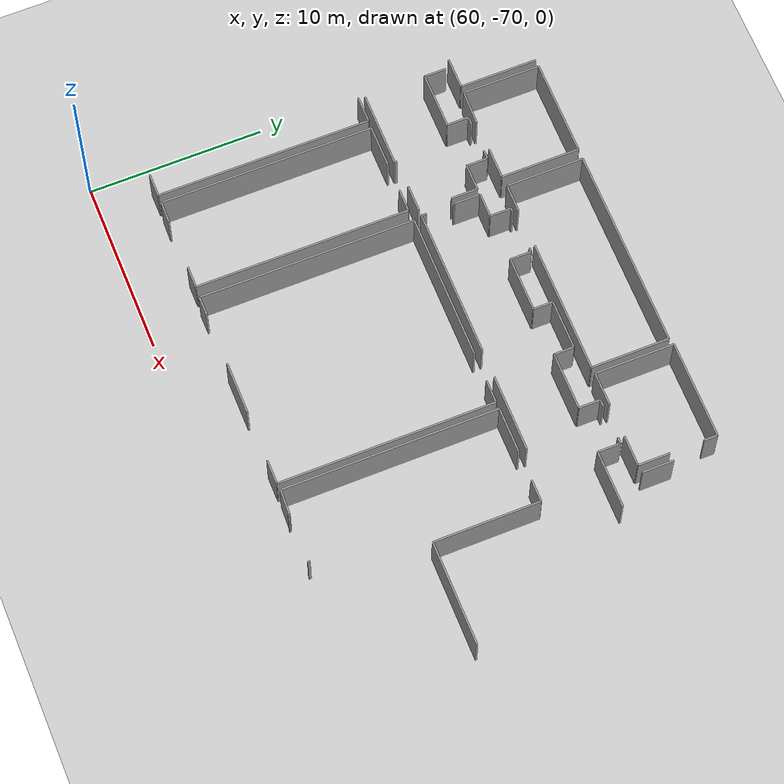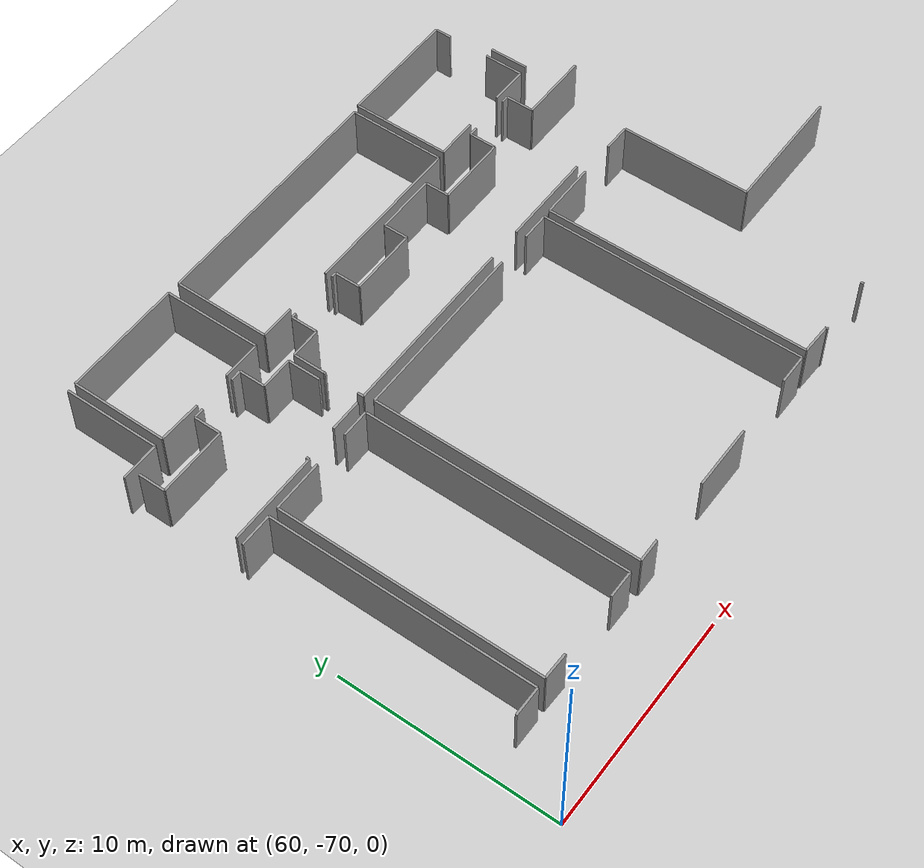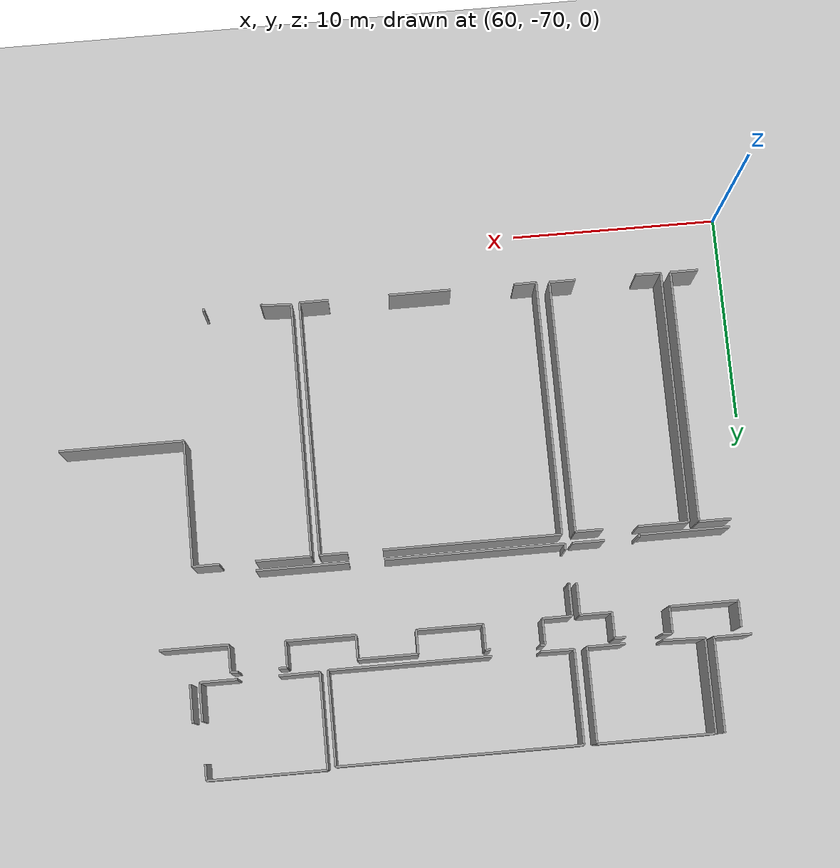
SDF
<sdf version="1.6">
 <world name="default">
  <model name="ground_plane">
   <static>1</static>
   <link name="link">
    <collision name="collision">
     <geometry><plane><normal>0 0 1</normal><size>100 100</size></plane></geometry>
     <surface><friction><ode><mu>100</mu><mu2>50</mu2></ode></friction></surface>
    </collision>
    <visual name="visual">
     <cast_shadows>0</cast_shadows>
     <geometry><plane><normal>0 0 1</normal><size>100 100</size></plane></geometry>
     <material>
      <script><uri>file://media/materials/scripts/gazebo.material</uri><name>Gazebo/Grey</name></script>
     </material>
    </visual>
   </link>
  </model>
  <model name="50036894">
   <static>1</static>
   <link name="Wall_393">
    <collision name="Wall_393_Collision">
     <geometry><box><size>1.24973847549 0.1 2.5</size></box></geometry>
     <pose>0.624869237743 0 1.25 0 0 0</pose>
    </collision>
    <visual name="Wall_393_Visual">
     <pose>0.624869237743 0 1.25 0 0 0</pose>
     <geometry><box><size>1.24973847549 0.1 2.5</size></box></geometry>
     <material>
      <script><uri>file://media/materials/scripts/gazebo.material</uri><name>Gazebo/Grey</name></script>
      <ambient>1 1 1 1</ambient>
     </material>
    </visual>
    <pose>184.205314178 -116.868045825 0 0 0 -1.57079632679</pose>
   </link>
   <link name="Wall_394">
    <collision name="Wall_394_Collision">
     <geometry><box><size>3.25368194815 0.1 2.5</size></box></geometry>
     <pose>1.62684097408 0 1.25 0 0 0</pose>
    </collision>
    <visual name="Wall_394_Visual">
     <pose>1.62684097408 0 1.25 0 0 0</pose>
     <geometry><box><size>3.25368194815 0.1 2.5</size></box></geometry>
     <material>
      <script><uri>file://media/materials/scripts/gazebo.material</uri><name>Gazebo/Grey</name></script>
      <ambient>1 1 1 1</ambient>
     </material>
    </visual>
    <pose>184.205314178 -118.117784301 0 0 0 0.0</pose>
   </link>
   <link name="Wall_395">
    <collision name="Wall_395_Collision">
     <geometry><box><size>1.26089685473 0.1 2.5</size></box></geometry>
     <pose>0.630448427366 0 1.25 0 0 0</pose>
    </collision>
    <visual name="Wall_395_Visual">
     <pose>0.630448427366 0 1.25 0 0 0</pose>
     <geometry><box><size>1.26089685473 0.1 2.5</size></box></geometry>
     <material>
      <script><uri>file://media/materials/scripts/gazebo.material</uri><name>Gazebo/Grey</name></script>
      <ambient>1 1 1 1</ambient>
     </material>
    </visual>
    <pose>187.458996126 -118.117784301 0 0 0 1.57079632679</pose>
   </link>
   <link name="Wall_396">
    <collision name="Wall_396_Collision">
     <geometry><box><size>0.466623132081 0.1 2.5</size></box></geometry>
     <pose>0.23331156604 0 1.25 0 0 0</pose>
    </collision>
    <visual name="Wall_396_Visual">
     <pose>0.23331156604 0 1.25 0 0 0</pose>
     <geometry><box><size>0.466623132081 0.1 2.5</size></box></geometry>
     <material>
      <script><uri>file://media/materials/scripts/gazebo.material</uri><name>Gazebo/Grey</name></script>
      <ambient>1 1 1 1</ambient>
     </material>
    </visual>
    <pose>187.458996126 -116.856887446 0 0 0 0.0</pose>
   </link>
   <link name="Wall_397">
    <collision name="Wall_397_Collision">
     <geometry><box><size>0.517343037742 0.1 2.5</size></box></geometry>
     <pose>0.258671518871 0 1.25 0 0 0</pose>
    </collision>
    <visual name="Wall_397_Visual">
     <pose>0.258671518871 0 1.25 0 0 0</pose>
     <geometry><box><size>0.517343037742 0.1 2.5</size></box></geometry>
     <material>
      <script><uri>file://media/materials/scripts/gazebo.material</uri><name>Gazebo/Grey</name></script>
      <ambient>1 1 1 1</ambient>
     </material>
    </visual>
    <pose>189.665312023 -116.856887446 0 0 0 0.0</pose>
   </link>
   <link name="Wall_398">
    <collision name="Wall_398_Collision">
     <geometry><box><size>1.22311052501 0.1 2.5</size></box></geometry>
     <pose>0.611555262507 0 1.25 0 0 0</pose>
    </collision>
    <visual name="Wall_398_Visual">
     <pose>0.611555262507 0 1.25 0 0 0</pose>
     <geometry><box><size>1.22311052501 0.1 2.5</size></box></geometry>
     <material>
      <script><uri>file://media/materials/scripts/gazebo.material</uri><name>Gazebo/Grey</name></script>
      <ambient>1 1 1 1</ambient>
     </material>
    </visual>
    <pose>190.18265506 -116.856887446 0 0 0 -1.57079632679</pose>
   </link>
   <link name="Wall_399">
    <collision name="Wall_399_Collision">
     <geometry><box><size>1.51398918398 0.1 2.5</size></box></geometry>
     <pose>0.75699459199 0 1.25 0 0 0</pose>
    </collision>
    <visual name="Wall_399_Visual">
     <pose>0.75699459199 0 1.25 0 0 0</pose>
     <geometry><box><size>1.51398918398 0.1 2.5</size></box></geometry>
     <material>
      <script><uri>file://media/materials/scripts/gazebo.material</uri><name>Gazebo/Grey</name></script>
      <ambient>1 1 1 1</ambient>
     </material>
    </visual>
    <pose>190.18265506 -118.079997971 0 0 0 0.0</pose>
   </link>
   <link name="Wall_400">
    <collision name="Wall_400_Collision">
     <geometry><box><size>1.53326274813 0.1 2.5</size></box></geometry>
     <pose>0.766631374066 0 1.25 0 0 0</pose>
    </collision>
    <visual name="Wall_400_Visual">
     <pose>0.766631374066 0 1.25 0 0 0</pose>
     <geometry><box><size>1.53326274813 0.1 2.5</size></box></geometry>
     <material>
      <script><uri>file://media/materials/scripts/gazebo.material</uri><name>Gazebo/Grey</name></script>
      <ambient>1 1 1 1</ambient>
     </material>
    </visual>
    <pose>191.696644244 -118.079997971 0 0 0 -1.57079632679</pose>
   </link>
   <link name="Wall_401">
    <collision name="Wall_401_Collision">
     <geometry><box><size>1.52413316511 0.1 2.5</size></box></geometry>
     <pose>0.762066582556 0 1.25 0 0 0</pose>
    </collision>
    <visual name="Wall_401_Visual">
     <pose>0.762066582556 0 1.25 0 0 0</pose>
     <geometry><box><size>1.52413316511 0.1 2.5</size></box></geometry>
     <material>
      <script><uri>file://media/materials/scripts/gazebo.material</uri><name>Gazebo/Grey</name></script>
      <ambient>1 1 1 1</ambient>
     </material>
    </visual>
    <pose>191.696644244 -121.501562807 0 0 0 3.14159265359</pose>
   </link>
   <link name="Wall_402">
    <collision name="Wall_402_Collision">
     <geometry><box><size>0.135929347171 0.1 2.5</size></box></geometry>
     <pose>0.0679646735857 0 1.25 0 0 0</pose>
    </collision>
    <visual name="Wall_402_Visual">
     <pose>0.0679646735857 0 1.25 0 0 0</pose>
     <geometry><box><size>0.135929347171 0.1 2.5</size></box></geometry>
     <material>
      <script><uri>file://media/materials/scripts/gazebo.material</uri><name>Gazebo/Grey</name></script>
      <ambient>1 1 1 1</ambient>
     </material>
    </visual>
    <pose>188.519042155 -121.501562807 0 0 0 -1.57079632679</pose>
   </link>
   <link name="Wall_403">
    <collision name="Wall_403_Collision">
     <geometry><box><size>4.33401593873 0.1 2.5</size></box></geometry>
     <pose>2.16700796937 0 1.25 0 0 0</pose>
    </collision>
    <visual name="Wall_403_Visual">
     <pose>2.16700796937 0 1.25 0 0 0</pose>
     <geometry><box><size>4.33401593873 0.1 2.5</size></box></geometry>
     <material>
      <script><uri>file://media/materials/scripts/gazebo.material</uri><name>Gazebo/Grey</name></script>
      <ambient>1 1 1 1</ambient>
     </material>
    </visual>
    <pose>188.519042155 -121.637492154 0 0 0 3.14159265359</pose>
   </link>
   <link name="Wall_438">
    <collision name="Wall_438_Collision">
     <geometry><box><size>1.53427714624 0.1 2.5</size></box></geometry>
     <pose>0.767138573122 0 1.25 0 0 0</pose>
    </collision>
    <visual name="Wall_438_Visual">
     <pose>0.767138573122 0 1.25 0 0 0</pose>
     <geometry><box><size>1.53427714624 0.1 2.5</size></box></geometry>
     <material>
      <script><uri>file://media/materials/scripts/gazebo.material</uri><name>Gazebo/Grey</name></script>
      <ambient>1 1 1 1</ambient>
     </material>
    </visual>
    <pose>184.088658395 -122.008508264 0 0 0 0.0</pose>
   </link>
   <link name="Wall_439">
    <collision name="Wall_439_Collision">
     <geometry><box><size>12.243531627 0.1 2.5</size></box></geometry>
     <pose>6.12176581352 0 1.25 0 0 0</pose>
    </collision>
    <visual name="Wall_439_Visual">
     <pose>6.12176581352 0 1.25 0 0 0</pose>
     <geometry><box><size>12.243531627 0.1 2.5</size></box></geometry>
     <material>
      <script><uri>file://media/materials/scripts/gazebo.material</uri><name>Gazebo/Grey</name></script>
      <ambient>1 1 1 1</ambient>
     </material>
    </visual>
    <pose>185.622935541 -122.008508264 0 0 0 -1.57079632679</pose>
   </link>
   <link name="Wall_440">
    <collision name="Wall_440_Collision">
     <geometry><box><size>1.33646951417 0.1 2.5</size></box></geometry>
     <pose>0.668234757083 0 1.25 0 0 0</pose>
    </collision>
    <visual name="Wall_440_Visual">
     <pose>0.668234757083 0 1.25 0 0 0</pose>
     <geometry><box><size>1.33646951417 0.1 2.5</size></box></geometry>
     <material>
      <script><uri>file://media/materials/scripts/gazebo.material</uri><name>Gazebo/Grey</name></script>
      <ambient>1 1 1 1</ambient>
     </material>
    </visual>
    <pose>185.622935541 -134.252039891 0 0 0 3.14159265359</pose>
   </link>
   <link name="Wall_442">
    <collision name="Wall_442_Collision">
     <geometry><box><size>12.2087884917 0.1 2.5</size></box></geometry>
     <pose>6.10439424583 0 1.25 0 0 0</pose>
    </collision>
    <visual name="Wall_442_Visual">
     <pose>6.10439424583 0 1.25 0 0 0</pose>
     <geometry><box><size>12.2087884917 0.1 2.5</size></box></geometry>
     <material>
      <script><uri>file://media/materials/scripts/gazebo.material</uri><name>Gazebo/Grey</name></script>
      <ambient>1 1 1 1</ambient>
     </material>
    </visual>
    <pose>186.097166659 -134.237584718 0 0 0 1.57079632679</pose>
   </link>
   <link name="Wall_443">
    <collision name="Wall_443_Collision">
     <geometry><box><size>2.42187549531 0.1 2.5</size></box></geometry>
     <pose>1.21093774766 0 1.25 0 0 0</pose>
    </collision>
    <visual name="Wall_443_Visual">
     <pose>1.21093774766 0 1.25 0 0 0</pose>
     <geometry><box><size>2.42187549531 0.1 2.5</size></box></geometry>
     <material>
      <script><uri>file://media/materials/scripts/gazebo.material</uri><name>Gazebo/Grey</name></script>
      <ambient>1 1 1 1</ambient>
     </material>
    </visual>
    <pose>186.097166659 -122.028796226 0 0 0 0.0</pose>
   </link>
   <link name="Wall_444">
    <collision name="Wall_444_Collision">
     <geometry><box><size>1.32632553303 0.1 2.5</size></box></geometry>
     <pose>0.663162766517 0 1.25 0 0 0</pose>
    </collision>
    <visual name="Wall_444_Visual">
     <pose>0.663162766517 0 1.25 0 0 0</pose>
     <geometry><box><size>1.32632553303 0.1 2.5</size></box></geometry>
     <material>
      <script><uri>file://media/materials/scripts/gazebo.material</uri><name>Gazebo/Grey</name></script>
      <ambient>1 1 1 1</ambient>
     </material>
    </visual>
    <pose>190.187727051 -122.028796226 0 0 0 0.0</pose>
   </link>
   <link name="Wall_445">
    <collision name="Wall_445_Collision">
     <geometry><box><size>12.2376988379 0.1 2.5</size></box></geometry>
     <pose>6.11884941894 0 1.25 0 0 0</pose>
    </collision>
    <visual name="Wall_445_Visual">
     <pose>6.11884941894 0 1.25 0 0 0</pose>
     <geometry><box><size>12.2376988379 0.1 2.5</size></box></geometry>
     <material>
      <script><uri>file://media/materials/scripts/gazebo.material</uri><name>Gazebo/Grey</name></script>
      <ambient>1 1 1 1</ambient>
     </material>
    </visual>
    <pose>191.514052584 -122.028796226 0 0 0 -1.57079632679</pose>
   </link>
   <link name="Wall_446">
    <collision name="Wall_446_Collision">
     <geometry><box><size>1.25531766511 0.1 2.5</size></box></geometry>
     <pose>0.627658832555 0 1.25 0 0 0</pose>
    </collision>
    <visual name="Wall_446_Visual">
     <pose>0.627658832555 0 1.25 0 0 0</pose>
     <geometry><box><size>1.25531766511 0.1 2.5</size></box></geometry>
     <material>
      <script><uri>file://media/materials/scripts/gazebo.material</uri><name>Gazebo/Grey</name></script>
      <ambient>1 1 1 1</ambient>
     </material>
    </visual>
    <pose>191.514052584 -134.266495064 0 0 0 3.14159265359</pose>
   </link>
   <link name="Wall_447">
    <collision name="Wall_447_Collision">
     <geometry><box><size>1.22015627967 0.1 2.5</size></box></geometry>
     <pose>0.610078139834 0 1.25 0 0 0</pose>
    </collision>
    <visual name="Wall_447_Visual">
     <pose>0.610078139834 0 1.25 0 0 0</pose>
     <geometry><box><size>1.22015627967 0.1 2.5</size></box></geometry>
     <material>
      <script><uri>file://media/materials/scripts/gazebo.material</uri><name>Gazebo/Grey</name></script>
      <ambient>1 1 1 1</ambient>
     </material>
    </visual>
    <pose>187.31698039 -134.266495064 0 0 0 3.1178964661</pose>
   </link>
   <link name="Wall_448">
    <collision name="Wall_448_Collision">
     <geometry><box><size>4.45193971939 0.1 2.5</size></box></geometry>
     <pose>2.2259698597 0 1.25 0 0 0</pose>
    </collision>
    <visual name="Wall_448_Visual">
     <pose>2.2259698597 0 1.25 0 0 0</pose>
     <geometry><box><size>4.45193971939 0.1 2.5</size></box></geometry>
     <material>
      <script><uri>file://media/materials/scripts/gazebo.material</uri><name>Gazebo/Grey</name></script>
      <ambient>1 1 1 1</ambient>
     </material>
    </visual>
    <pose>185.952614928 -116.504637701 0 0 0 1.57079632679</pose>
   </link>
   <link name="Wall_449">
    <collision name="Wall_449_Collision">
     <geometry><box><size>5.56143765573 0.1 2.5</size></box></geometry>
     <pose>2.78071882786 0 1.25 0 0 0</pose>
    </collision>
    <visual name="Wall_449_Visual">
     <pose>2.78071882786 0 1.25 0 0 0</pose>
     <geometry><box><size>5.56143765573 0.1 2.5</size></box></geometry>
     <material>
      <script><uri>file://media/materials/scripts/gazebo.material</uri><name>Gazebo/Grey</name></script>
      <ambient>1 1 1 1</ambient>
     </material>
    </visual>
    <pose>185.952614928 -112.052697982 0 0 0 0.0</pose>
   </link>
   <link name="Wall_450">
    <collision name="Wall_450_Collision">
     <geometry><box><size>4.51432520336 0.1 2.5</size></box></geometry>
     <pose>2.25716260168 0 1.25 0 0 0</pose>
    </collision>
    <visual name="Wall_450_Visual">
     <pose>2.25716260168 0 1.25 0 0 0</pose>
     <geometry><box><size>4.51432520336 0.1 2.5</size></box></geometry>
     <material>
      <script><uri>file://media/materials/scripts/gazebo.material</uri><name>Gazebo/Grey</name></script>
      <ambient>1 1 1 1</ambient>
     </material>
    </visual>
    <pose>191.514052584 -112.052697982 0 0 0 -1.57079632679</pose>
   </link>
   <link name="Wall_451">
    <collision name="Wall_451_Collision">
     <geometry><box><size>1.8107006321 0.1 2.5</size></box></geometry>
     <pose>0.905350316048 0 1.25 0 0 0</pose>
    </collision>
    <visual name="Wall_451_Visual">
     <pose>0.905350316048 0 1.25 0 0 0</pose>
     <geometry><box><size>1.8107006321 0.1 2.5</size></box></geometry>
     <material>
      <script><uri>file://media/materials/scripts/gazebo.material</uri><name>Gazebo/Grey</name></script>
      <ambient>1 1 1 1</ambient>
     </material>
    </visual>
    <pose>191.514052584 -116.567023185 0 0 0 3.14159265359</pose>
   </link>
   <link name="Wall_452">
    <collision name="Wall_452_Collision">
     <geometry><box><size>1.98666406677 0.1 2.5</size></box></geometry>
     <pose>0.993332033385 0 1.25 0 0 0</pose>
    </collision>
    <visual name="Wall_452_Visual">
     <pose>0.993332033385 0 1.25 0 0 0</pose>
     <geometry><box><size>1.98666406677 0.1 2.5</size></box></geometry>
     <material>
      <script><uri>file://media/materials/scripts/gazebo.material</uri><name>Gazebo/Grey</name></script>
      <ambient>1 1 1 1</ambient>
     </material>
    </visual>
    <pose>187.938299235 -116.567023185 0 0 0 3.11018536005</pose>
   </link>
   <link name="Wall_455">
    <collision name="Wall_455_Collision">
     <geometry><box><size>4.46740929062 0.1 2.5</size></box></geometry>
     <pose>2.23370464531 0 1.25 0 0 0</pose>
    </collision>
    <visual name="Wall_455_Visual">
     <pose>2.23370464531 0 1.25 0 0 0</pose>
     <geometry><box><size>4.46740929062 0.1 2.5</size></box></geometry>
     <material>
      <script><uri>file://media/materials/scripts/gazebo.material</uri><name>Gazebo/Grey</name></script>
      <ambient>1 1 1 1</ambient>
     </material>
    </visual>
    <pose>185.539247697 -112.037228411 0 0 0 -1.57079632679</pose>
   </link>
   <link name="Wall_456">
    <collision name="Wall_456_Collision">
     <geometry><box><size>1.79041266983 0.1 2.5</size></box></geometry>
     <pose>0.895206334916 0 1.25 0 0 0</pose>
    </collision>
    <visual name="Wall_456_Visual">
     <pose>0.895206334916 0 1.25 0 0 0</pose>
     <geometry><box><size>1.79041266983 0.1 2.5</size></box></geometry>
     <material>
      <script><uri>file://media/materials/scripts/gazebo.material</uri><name>Gazebo/Grey</name></script>
      <ambient>1 1 1 1</ambient>
     </material>
    </visual>
    <pose>185.539247697 -116.504637701 0 0 0 3.14159265359</pose>
   </link>
   <link name="Wall_468">
    <collision name="Wall_468_Collision">
     <geometry><box><size>1.49370122172 0.1 2.5</size></box></geometry>
     <pose>0.746850610858 0 1.25 0 0 0</pose>
    </collision>
    <visual name="Wall_468_Visual">
     <pose>0.746850610858 0 1.25 0 0 0</pose>
     <geometry><box><size>1.49370122172 0.1 2.5</size></box></geometry>
     <material>
      <script><uri>file://media/materials/scripts/gazebo.material</uri><name>Gazebo/Grey</name></script>
      <ambient>1 1 1 1</ambient>
     </material>
    </visual>
    <pose>192.056755574 -119.564062411 0 0 0 1.57079632679</pose>
   </link>
   <link name="Wall_469">
    <collision name="Wall_469_Collision">
     <geometry><box><size>1.40747738209 0.1 2.5</size></box></geometry>
     <pose>0.703738691046 0 1.25 0 0 0</pose>
    </collision>
    <visual name="Wall_469_Visual">
     <pose>0.703738691046 0 1.25 0 0 0</pose>
     <geometry><box><size>1.40747738209 0.1 2.5</size></box></geometry>
     <material>
      <script><uri>file://media/materials/scripts/gazebo.material</uri><name>Gazebo/Grey</name></script>
      <ambient>1 1 1 1</ambient>
     </material>
    </visual>
    <pose>192.056755574 -118.070361189 0 0 0 0.0</pose>
   </link>
   <link name="Wall_470">
    <collision name="Wall_470_Collision">
     <geometry><box><size>1.23224010803 0.1 2.5</size></box></geometry>
     <pose>0.616120054017 0 1.25 0 0 0</pose>
    </collision>
    <visual name="Wall_470_Visual">
     <pose>0.616120054017 0 1.25 0 0 0</pose>
     <geometry><box><size>1.23224010803 0.1 2.5</size></box></geometry>
     <material>
      <script><uri>file://media/materials/scripts/gazebo.material</uri><name>Gazebo/Grey</name></script>
      <ambient>1 1 1 1</ambient>
     </material>
    </visual>
    <pose>193.464232957 -118.070361189 0 0 0 1.57079632679</pose>
   </link>
   <link name="Wall_471">
    <collision name="Wall_471_Collision">
     <geometry><box><size>0.230775570757 0.1 2.5</size></box></geometry>
     <pose>0.115387785379 0 1.25 0 0 0</pose>
    </collision>
    <visual name="Wall_471_Visual">
     <pose>0.115387785379 0 1.25 0 0 0</pose>
     <geometry><box><size>0.230775570757 0.1 2.5</size></box></geometry>
     <material>
      <script><uri>file://media/materials/scripts/gazebo.material</uri><name>Gazebo/Grey</name></script>
      <ambient>1 1 1 1</ambient>
     </material>
    </visual>
    <pose>193.464232957 -116.838121081 0 0 0 0.0</pose>
   </link>
   <link name="Wall_472">
    <collision name="Wall_472_Collision">
     <geometry><box><size>0.24091955189 0.1 2.5</size></box></geometry>
     <pose>0.120459775945 0 1.25 0 0 0</pose>
    </collision>
    <visual name="Wall_472_Visual">
     <pose>0.120459775945 0 1.25 0 0 0</pose>
     <geometry><box><size>0.24091955189 0.1 2.5</size></box></geometry>
     <material>
      <script><uri>file://media/materials/scripts/gazebo.material</uri><name>Gazebo/Grey</name></script>
      <ambient>1 1 1 1</ambient>
     </material>
    </visual>
    <pose>196.020516202 -116.838121081 0 0 0 0.0</pose>
   </link>
   <link name="Wall_473">
    <collision name="Wall_473_Collision">
     <geometry><box><size>1.21169854624 0.1 2.5</size></box></geometry>
     <pose>0.60584927312 0 1.25 0 0 0</pose>
    </collision>
    <visual name="Wall_473_Visual">
     <pose>0.60584927312 0 1.25 0 0 0</pose>
     <geometry><box><size>1.21169854624 0.1 2.5</size></box></geometry>
     <material>
      <script><uri>file://media/materials/scripts/gazebo.material</uri><name>Gazebo/Grey</name></script>
      <ambient>1 1 1 1</ambient>
     </material>
    </visual>
    <pose>196.261435754 -116.838121081 0 0 0 -1.57079632679</pose>
   </link>
   <link name="Wall_474">
    <collision name="Wall_474_Collision">
     <geometry><box><size>3.16745810853 0.1 2.5</size></box></geometry>
     <pose>1.58372905426 0 1.25 0 0 0</pose>
    </collision>
    <visual name="Wall_474_Visual">
     <pose>1.58372905426 0 1.25 0 0 0</pose>
     <geometry><box><size>3.16745810853 0.1 2.5</size></box></geometry>
     <material>
      <script><uri>file://media/materials/scripts/gazebo.material</uri><name>Gazebo/Grey</name></script>
      <ambient>1 1 1 1</ambient>
     </material>
    </visual>
    <pose>196.261435754 -118.049819627 0 0 0 0.0</pose>
   </link>
   <link name="Wall_475">
    <collision name="Wall_475_Collision">
     <geometry><box><size>1.12927869954 0.1 2.5</size></box></geometry>
     <pose>0.564639349771 0 1.25 0 0 0</pose>
    </collision>
    <visual name="Wall_475_Visual">
     <pose>0.564639349771 0 1.25 0 0 0</pose>
     <geometry><box><size>1.12927869954 0.1 2.5</size></box></geometry>
     <material>
      <script><uri>file://media/materials/scripts/gazebo.material</uri><name>Gazebo/Grey</name></script>
      <ambient>1 1 1 1</ambient>
     </material>
    </visual>
    <pose>199.428893862 -118.049819627 0 0 0 1.57079632679</pose>
   </link>
   <link name="Wall_476">
    <collision name="Wall_476_Collision">
     <geometry><box><size>2.84031471701 0.1 2.5</size></box></geometry>
     <pose>1.42015735851 0 1.25 0 0 0</pose>
    </collision>
    <visual name="Wall_476_Visual">
     <pose>1.42015735851 0 1.25 0 0 0</pose>
     <geometry><box><size>2.84031471701 0.1 2.5</size></box></geometry>
     <material>
      <script><uri>file://media/materials/scripts/gazebo.material</uri><name>Gazebo/Grey</name></script>
      <ambient>1 1 1 1</ambient>
     </material>
    </visual>
    <pose>199.428893862 -116.920540928 0 0 0 0.0</pose>
   </link>
   <link name="Wall_477">
    <collision name="Wall_477_Collision">
     <geometry><box><size>1.14018347926 0.1 2.5</size></box></geometry>
     <pose>0.570091739629 0 1.25 0 0 0</pose>
    </collision>
    <visual name="Wall_477_Visual">
     <pose>0.570091739629 0 1.25 0 0 0</pose>
     <geometry><box><size>1.14018347926 0.1 2.5</size></box></geometry>
     <material>
      <script><uri>file://media/materials/scripts/gazebo.material</uri><name>Gazebo/Grey</name></script>
      <ambient>1 1 1 1</ambient>
     </material>
    </visual>
    <pose>202.269208579 -116.920540928 0 0 0 -1.57079632679</pose>
   </link>
   <link name="Wall_478">
    <collision name="Wall_478_Collision">
     <geometry><box><size>3.31200983966 0.1 2.5</size></box></geometry>
     <pose>1.65600491983 0 1.25 0 0 0</pose>
    </collision>
    <visual name="Wall_478_Visual">
     <pose>1.65600491983 0 1.25 0 0 0</pose>
     <geometry><box><size>3.31200983966 0.1 2.5</size></box></geometry>
     <material>
      <script><uri>file://media/materials/scripts/gazebo.material</uri><name>Gazebo/Grey</name></script>
      <ambient>1 1 1 1</ambient>
     </material>
    </visual>
    <pose>202.269208579 -118.060724407 0 0 0 0.0</pose>
   </link>
   <link name="Wall_479">
    <collision name="Wall_479_Collision">
     <geometry><box><size>1.23883369577 0.1 2.5</size></box></geometry>
     <pose>0.619416847885 0 1.25 0 0 0</pose>
    </collision>
    <visual name="Wall_479_Visual">
     <pose>0.619416847885 0 1.25 0 0 0</pose>
     <geometry><box><size>1.23883369577 0.1 2.5</size></box></geometry>
     <material>
      <script><uri>file://media/materials/scripts/gazebo.material</uri><name>Gazebo/Grey</name></script>
      <ambient>1 1 1 1</ambient>
     </material>
    </visual>
    <pose>205.581218419 -118.060724407 0 0 0 1.57079632679</pose>
   </link>
   <link name="Wall_480">
    <collision name="Wall_480_Collision">
     <geometry><box><size>0.405759245288 0.1 2.5</size></box></geometry>
     <pose>0.202879622644 0 1.25 0 0 0</pose>
    </collision>
    <visual name="Wall_480_Visual">
     <pose>0.202879622644 0 1.25 0 0 0</pose>
     <geometry><box><size>0.405759245288 0.1 2.5</size></box></geometry>
     <material>
      <script><uri>file://media/materials/scripts/gazebo.material</uri><name>Gazebo/Grey</name></script>
      <ambient>1 1 1 1</ambient>
     </material>
    </visual>
    <pose>205.581218419 -116.821890711 0 0 0 0.0</pose>
   </link>
   <link name="Wall_481">
    <collision name="Wall_481_Collision">
     <geometry><box><size>0.352503344344 0.1 2.5</size></box></geometry>
     <pose>0.176251672172 0 1.25 0 0 0</pose>
    </collision>
    <visual name="Wall_481_Visual">
     <pose>0.176251672172 0 1.25 0 0 0</pose>
     <geometry><box><size>0.352503344344 0.1 2.5</size></box></geometry>
     <material>
      <script><uri>file://media/materials/scripts/gazebo.material</uri><name>Gazebo/Grey</name></script>
      <ambient>1 1 1 1</ambient>
     </material>
    </visual>
    <pose>207.894046117 -116.821890711 0 0 0 0.0</pose>
   </link>
   <link name="Wall_482">
    <collision name="Wall_482_Collision">
     <geometry><box><size>1.3045159736 0.1 2.5</size></box></geometry>
     <pose>0.6522579868 0 1.25 0 0 0</pose>
    </collision>
    <visual name="Wall_482_Visual">
     <pose>0.6522579868 0 1.25 0 0 0</pose>
     <geometry><box><size>1.3045159736 0.1 2.5</size></box></geometry>
     <material>
      <script><uri>file://media/materials/scripts/gazebo.material</uri><name>Gazebo/Grey</name></script>
      <ambient>1 1 1 1</ambient>
     </material>
    </visual>
    <pose>208.246549461 -116.821890711 0 0 0 -1.57079632679</pose>
   </link>
   <link name="Wall_483">
    <collision name="Wall_483_Collision">
     <geometry><box><size>3.27143391513 0.1 2.5</size></box></geometry>
     <pose>1.63571695757 0 1.25 0 0 0</pose>
    </collision>
    <visual name="Wall_483_Visual">
     <pose>1.63571695757 0 1.25 0 0 0</pose>
     <geometry><box><size>3.27143391513 0.1 2.5</size></box></geometry>
     <material>
      <script><uri>file://media/materials/scripts/gazebo.material</uri><name>Gazebo/Grey</name></script>
      <ambient>1 1 1 1</ambient>
     </material>
    </visual>
    <pose>208.246549461 -118.126406685 0 0 0 0.0</pose>
   </link>
   <link name="Wall_496">
    <collision name="Wall_496_Collision">
     <geometry><box><size>4.4126317925 0.1 2.5</size></box></geometry>
     <pose>2.20631589625 0 1.25 0 0 0</pose>
    </collision>
    <visual name="Wall_496_Visual">
     <pose>2.20631589625 0 1.25 0 0 0</pose>
     <geometry><box><size>4.4126317925 0.1 2.5</size></box></geometry>
     <material>
      <script><uri>file://media/materials/scripts/gazebo.material</uri><name>Gazebo/Grey</name></script>
      <ambient>1 1 1 1</ambient>
     </material>
    </visual>
    <pose>206.71480831 -121.499280411 0 0 0 3.14159265359</pose>
   </link>
   <link name="Wall_497">
    <collision name="Wall_497_Collision">
     <geometry><box><size>8.5716640567 0.1 2.5</size></box></geometry>
     <pose>4.28583202835 0 1.25 0 0 0</pose>
    </collision>
    <visual name="Wall_497_Visual">
     <pose>4.28583202835 0 1.25 0 0 0</pose>
     <geometry><box><size>8.5716640567 0.1 2.5</size></box></geometry>
     <material>
      <script><uri>file://media/materials/scripts/gazebo.material</uri><name>Gazebo/Grey</name></script>
      <ambient>1 1 1 1</ambient>
     </material>
    </visual>
    <pose>200.630955626 -121.499280411 0 0 0 3.14159265359</pose>
   </link>
   <link name="Wall_498">
    <collision name="Wall_498_Collision">
     <geometry><box><size>0.292400256136 0.1 2.5</size></box></geometry>
     <pose>0.146200128068 0 1.25 0 0 0</pose>
    </collision>
    <visual name="Wall_498_Visual">
     <pose>0.146200128068 0 1.25 0 0 0</pose>
     <geometry><box><size>0.292400256136 0.1 2.5</size></box></geometry>
     <material>
      <script><uri>file://media/materials/scripts/gazebo.material</uri><name>Gazebo/Grey</name></script>
      <ambient>1 1 1 1</ambient>
     </material>
    </visual>
    <pose>192.05929157 -121.499280411 0 0 0 1.57079632679</pose>
   </link>
   <link name="Wall_499">
    <collision name="Wall_499_Collision">
     <geometry><box><size>0.0822053735847 0.1 2.5</size></box></geometry>
     <pose>0.0411026867924 0 1.25 0 0 0</pose>
    </collision>
    <visual name="Wall_499_Visual">
     <pose>0.0411026867924 0 1.25 0 0 0</pose>
     <geometry><box><size>0.0822053735847 0.1 2.5</size></box></geometry>
     <material>
      <script><uri>file://media/materials/scripts/gazebo.material</uri><name>Gazebo/Grey</name></script>
      <ambient>1 1 1 1</ambient>
     </material>
    </visual>
    <pose>192.05929157 -119.646228658 0 0 0 1.60165072953</pose>
   </link>
   <link name="Wall_500">
    <collision name="Wall_500_Collision">
     <geometry><box><size>12.3515650261 0.1 2.5</size></box></geometry>
     <pose>6.17578251304 0 1.25 0 0 0</pose>
    </collision>
    <visual name="Wall_500_Visual">
     <pose>6.17578251304 0 1.25 0 0 0</pose>
     <geometry><box><size>12.3515650261 0.1 2.5</size></box></geometry>
     <material>
      <script><uri>file://media/materials/scripts/gazebo.material</uri><name>Gazebo/Grey</name></script>
      <ambient>1 1 1 1</ambient>
     </material>
    </visual>
    <pose>192.160731381 -134.310114183 0 0 0 1.57079632679</pose>
   </link>
   <link name="Wall_501">
    <collision name="Wall_501_Collision">
     <geometry><box><size>8.50319218406 0.1 2.5</size></box></geometry>
     <pose>4.25159609203 0 1.25 0 0 0</pose>
    </collision>
    <visual name="Wall_501_Visual">
     <pose>4.25159609203 0 1.25 0 0 0</pose>
     <geometry><box><size>8.50319218406 0.1 2.5</size></box></geometry>
     <material>
      <script><uri>file://media/materials/scripts/gazebo.material</uri><name>Gazebo/Grey</name></script>
      <ambient>1 1 1 1</ambient>
     </material>
    </visual>
    <pose>192.160731381 -121.958549157 0 0 0 0.0</pose>
   </link>
   <link name="Wall_502">
    <collision name="Wall_502_Collision">
     <geometry><box><size>1.32378953775 0.1 2.5</size></box></geometry>
     <pose>0.661894768876 0 1.25 0 0 0</pose>
    </collision>
    <visual name="Wall_502_Visual">
     <pose>0.661894768876 0 1.25 0 0 0</pose>
     <geometry><box><size>1.32378953775 0.1 2.5</size></box></geometry>
     <material>
      <script><uri>file://media/materials/scripts/gazebo.material</uri><name>Gazebo/Grey</name></script>
      <ambient>1 1 1 1</ambient>
     </material>
    </visual>
    <pose>202.340216447 -121.958549157 0 0 0 0.0</pose>
   </link>
   <link name="Wall_503">
    <collision name="Wall_503_Collision">
     <geometry><box><size>12.3391386492 0.1 2.5</size></box></geometry>
     <pose>6.1695693246 0 1.25 0 0 0</pose>
    </collision>
    <visual name="Wall_503_Visual">
     <pose>6.1695693246 0 1.25 0 0 0</pose>
     <geometry><box><size>12.3391386492 0.1 2.5</size></box></geometry>
     <material>
      <script><uri>file://media/materials/scripts/gazebo.material</uri><name>Gazebo/Grey</name></script>
      <ambient>1 1 1 1</ambient>
     </material>
    </visual>
    <pose>203.664005985 -121.958549157 0 0 0 -1.57079632679</pose>
   </link>
   <link name="Wall_504">
    <collision name="Wall_504_Collision">
     <geometry><box><size>1.39986939624 0.1 2.5</size></box></geometry>
     <pose>0.699934698121 0 1.25 0 0 0</pose>
    </collision>
    <visual name="Wall_504_Visual">
     <pose>0.699934698121 0 1.25 0 0 0</pose>
     <geometry><box><size>1.39986939624 0.1 2.5</size></box></geometry>
     <material>
      <script><uri>file://media/materials/scripts/gazebo.material</uri><name>Gazebo/Grey</name></script>
      <ambient>1 1 1 1</ambient>
     </material>
    </visual>
    <pose>203.664005985 -134.297687806 0 0 0 3.14159265359</pose>
   </link>
   <link name="Wall_505">
    <collision name="Wall_505_Collision">
     <geometry><box><size>3.00261841513 0.1 2.5</size></box></geometry>
     <pose>1.50130920756 0 1.25 0 0 0</pose>
    </collision>
    <visual name="Wall_505_Visual">
     <pose>1.50130920756 0 1.25 0 0 0</pose>
     <geometry><box><size>3.00261841513 0.1 2.5</size></box></geometry>
     <material>
      <script><uri>file://media/materials/scripts/gazebo.material</uri><name>Gazebo/Grey</name></script>
      <ambient>1 1 1 1</ambient>
     </material>
    </visual>
    <pose>199.329990046 -134.297687806 0 0 0 3.14159265359</pose>
   </link>
   <link name="Wall_506">
    <collision name="Wall_506_Collision">
     <geometry><box><size>1.0829412824 0.1 2.5</size></box></geometry>
     <pose>0.541470641199 0 1.25 0 0 0</pose>
    </collision>
    <visual name="Wall_506_Visual">
     <pose>0.541470641199 0 1.25 0 0 0</pose>
     <geometry><box><size>1.0829412824 0.1 2.5</size></box></geometry>
     <material>
      <script><uri>file://media/materials/scripts/gazebo.material</uri><name>Gazebo/Grey</name></script>
      <ambient>1 1 1 1</ambient>
     </material>
    </visual>
    <pose>193.243601367 -134.297687806 0 0 0 -3.13011774743</pose>
   </link>
   <link name="Wall_507">
    <collision name="Wall_507_Collision">
     <geometry><box><size>12.305917111 0.1 2.5</size></box></geometry>
     <pose>6.1529585555 0 1.25 0 0 0</pose>
    </collision>
    <visual name="Wall_507_Visual">
     <pose>6.1529585555 0 1.25 0 0 0</pose>
     <geometry><box><size>12.305917111 0.1 2.5</size></box></geometry>
     <material>
      <script><uri>file://media/materials/scripts/gazebo.material</uri><name>Gazebo/Grey</name></script>
      <ambient>1 1 1 1</ambient>
     </material>
    </visual>
    <pose>204.06469324 -134.247728699 0 0 0 1.57079632679</pose>
   </link>
   <link name="Wall_508">
    <collision name="Wall_508_Collision">
     <geometry><box><size>2.63489909909 0.1 2.5</size></box></geometry>
     <pose>1.31744954954 0 1.25 0 0 0</pose>
    </collision>
    <visual name="Wall_508_Visual">
     <pose>1.31744954954 0 1.25 0 0 0</pose>
     <geometry><box><size>2.63489909909 0.1 2.5</size></box></geometry>
     <material>
      <script><uri>file://media/materials/scripts/gazebo.material</uri><name>Gazebo/Grey</name></script>
      <ambient>1 1 1 1</ambient>
     </material>
    </visual>
    <pose>204.06469324 -121.941811588 0 0 0 0.0</pose>
   </link>
   <link name="Wall_509">
    <collision name="Wall_509_Collision">
     <geometry><box><size>1.27306963209 0.1 2.5</size></box></geometry>
     <pose>0.636534816045 0 1.25 0 0 0</pose>
    </collision>
    <visual name="Wall_509_Visual">
     <pose>0.636534816045 0 1.25 0 0 0</pose>
     <geometry><box><size>1.27306963209 0.1 2.5</size></box></geometry>
     <material>
      <script><uri>file://media/materials/scripts/gazebo.material</uri><name>Gazebo/Grey</name></script>
      <ambient>1 1 1 1</ambient>
     </material>
    </visual>
    <pose>208.41392515 -121.941811588 0 0 0 0.0</pose>
   </link>
   <link name="Wall_510">
    <collision name="Wall_510_Collision">
     <geometry><box><size>6.06102872649 0.1 2.5</size></box></geometry>
     <pose>3.03051436324 0 1.25 0 0 0</pose>
    </collision>
    <visual name="Wall_510_Visual">
     <pose>3.03051436324 0 1.25 0 0 0</pose>
     <geometry><box><size>6.06102872649 0.1 2.5</size></box></geometry>
     <material>
      <script><uri>file://media/materials/scripts/gazebo.material</uri><name>Gazebo/Grey</name></script>
      <ambient>1 1 1 1</ambient>
     </material>
    </visual>
    <pose>209.686994782 -121.941811588 0 0 0 -1.57079632679</pose>
   </link>
   <link name="Wall_511">
    <collision name="Wall_511_Collision">
     <geometry><box><size>5.99002085856 0.1 2.5</size></box></geometry>
     <pose>2.99501042928 0 1.25 0 0 0</pose>
    </collision>
    <visual name="Wall_511_Visual">
     <pose>2.99501042928 0 1.25 0 0 0</pose>
     <geometry><box><size>5.99002085856 0.1 2.5</size></box></geometry>
     <material>
      <script><uri>file://media/materials/scripts/gazebo.material</uri><name>Gazebo/Grey</name></script>
      <ambient>1 1 1 1</ambient>
     </material>
    </visual>
    <pose>209.686994782 -128.002840315 0 0 0 0.0</pose>
   </link>
   <link name="Wall_515">
    <collision name="Wall_515_Collision">
     <geometry><box><size>0.143283733492 0.1 2.5</size></box></geometry>
     <pose>0.0716418667461 0 1.25 0 0 0</pose>
    </collision>
    <visual name="Wall_515_Visual">
     <pose>0.0716418667461 0 1.25 0 0 0</pose>
     <geometry><box><size>0.143283733492 0.1 2.5</size></box></geometry>
     <material>
      <script><uri>file://media/materials/scripts/gazebo.material</uri><name>Gazebo/Grey</name></script>
      <ambient>1 1 1 1</ambient>
     </material>
    </visual>
    <pose>208.304877353 -134.247728699 0 0 0 -1.57079632679</pose>
   </link>
   <link name="Wall_516">
    <collision name="Wall_516_Collision">
     <geometry><box><size>0.0857166405671 0.1 2.5</size></box></geometry>
     <pose>0.0428583202835 0 1.25 0 0 0</pose>
    </collision>
    <visual name="Wall_516_Visual">
     <pose>0.0428583202835 0 1.25 0 0 0</pose>
     <geometry><box><size>0.0857166405671 0.1 2.5</size></box></geometry>
     <material>
      <script><uri>file://media/materials/scripts/gazebo.material</uri><name>Gazebo/Grey</name></script>
      <ambient>1 1 1 1</ambient>
     </material>
    </visual>
    <pose>205.502602565 -134.391012433 0 0 0 1.57079632679</pose>
   </link>
   <link name="Wall_517">
    <collision name="Wall_517_Collision">
     <geometry><box><size>1.43906122125 0.1 2.5</size></box></geometry>
     <pose>0.719530610627 0 1.25 0 0 0</pose>
    </collision>
    <visual name="Wall_517_Visual">
     <pose>0.719530610627 0 1.25 0 0 0</pose>
     <geometry><box><size>1.43906122125 0.1 2.5</size></box></geometry>
     <material>
      <script><uri>file://media/materials/scripts/gazebo.material</uri><name>Gazebo/Grey</name></script>
      <ambient>1 1 1 1</ambient>
     </material>
    </visual>
    <pose>205.502602565 -134.305295792 0 0 0 3.10157874949</pose>
   </link>
   <link name="Wall_523">
    <collision name="Wall_523_Collision">
     <geometry><box><size>4.44889652505 0.1 2.5</size></box></geometry>
     <pose>2.22444826253 0 1.25 0 0 0</pose>
    </collision>
    <visual name="Wall_523_Visual">
     <pose>2.22444826253 0 1.25 0 0 0</pose>
     <geometry><box><size>4.44889652505 0.1 2.5</size></box></geometry>
     <material>
      <script><uri>file://media/materials/scripts/gazebo.material</uri><name>Gazebo/Grey</name></script>
      <ambient>1 1 1 1</ambient>
     </material>
    </visual>
    <pose>192.120155457 -116.506920097 0 0 0 1.57079632679</pose>
   </link>
   <link name="Wall_524">
    <collision name="Wall_524_Collision">
     <geometry><box><size>11.5818904577 0.1 2.5</size></box></geometry>
     <pose>5.79094522884 0 1.25 0 0 0</pose>
    </collision>
    <visual name="Wall_524_Visual">
     <pose>5.79094522884 0 1.25 0 0 0</pose>
     <geometry><box><size>11.5818904577 0.1 2.5</size></box></geometry>
     <material>
      <script><uri>file://media/materials/scripts/gazebo.material</uri><name>Gazebo/Grey</name></script>
      <ambient>1 1 1 1</ambient>
     </material>
    </visual>
    <pose>192.120155457 -112.058023572 0 0 0 0.0</pose>
   </link>
   <link name="Wall_525">
    <collision name="Wall_525_Collision">
     <geometry><box><size>4.46791648968 0.1 2.5</size></box></geometry>
     <pose>2.23395824484 0 1.25 0 0 0</pose>
    </collision>
    <visual name="Wall_525_Visual">
     <pose>2.23395824484 0 1.25 0 0 0</pose>
     <geometry><box><size>4.46791648968 0.1 2.5</size></box></geometry>
     <material>
      <script><uri>file://media/materials/scripts/gazebo.material</uri><name>Gazebo/Grey</name></script>
      <ambient>1 1 1 1</ambient>
     </material>
    </visual>
    <pose>203.702045914 -112.058023572 0 0 0 -1.57079632679</pose>
   </link>
   <link name="Wall_526">
    <collision name="Wall_526_Collision">
     <geometry><box><size>7.70942566047 0.1 2.5</size></box></geometry>
     <pose>3.85471283023 0 1.25 0 0 0</pose>
    </collision>
    <visual name="Wall_526_Visual">
     <pose>3.85471283023 0 1.25 0 0 0</pose>
     <geometry><box><size>7.70942566047 0.1 2.5</size></box></geometry>
     <material>
      <script><uri>file://media/materials/scripts/gazebo.material</uri><name>Gazebo/Grey</name></script>
      <ambient>1 1 1 1</ambient>
     </material>
    </visual>
    <pose>203.702045914 -116.525940062 0 0 0 3.14159265359</pose>
   </link>
   <link name="Wall_527">
    <collision name="Wall_527_Collision">
     <geometry><box><size>1.60539768773 0.1 2.5</size></box></geometry>
     <pose>0.802698843866 0 1.25 0 0 0</pose>
    </collision>
    <visual name="Wall_527_Visual">
     <pose>0.802698843866 0 1.25 0 0 0</pose>
     <geometry><box><size>1.60539768773 0.1 2.5</size></box></geometry>
     <material>
      <script><uri>file://media/materials/scripts/gazebo.material</uri><name>Gazebo/Grey</name></script>
      <ambient>1 1 1 1</ambient>
     </material>
    </visual>
    <pose>193.725440471 -116.525940062 0 0 0 3.12974486675</pose>
   </link>
   <link name="Wall_528">
    <collision name="Wall_528_Collision">
     <geometry><box><size>4.5505899359 0.1 2.5</size></box></geometry>
     <pose>2.27529496795 0 1.25 0 0 0</pose>
    </collision>
    <visual name="Wall_528_Visual">
     <pose>2.27529496795 0 1.25 0 0 0</pose>
     <geometry><box><size>4.5505899359 0.1 2.5</size></box></geometry>
     <material>
      <script><uri>file://media/materials/scripts/gazebo.material</uri><name>Gazebo/Grey</name></script>
      <ambient>1 1 1 1</ambient>
     </material>
    </visual>
    <pose>204.084981202 -116.487646533 0 0 0 1.57079632679</pose>
   </link>
   <link name="Wall_529">
    <collision name="Wall_529_Collision">
     <geometry><box><size>5.63244552365 0.1 2.5</size></box></geometry>
     <pose>2.81622276183 0 1.25 0 0 0</pose>
    </collision>
    <visual name="Wall_529_Visual">
     <pose>2.81622276183 0 1.25 0 0 0</pose>
     <geometry><box><size>5.63244552365 0.1 2.5</size></box></geometry>
     <material>
      <script><uri>file://media/materials/scripts/gazebo.material</uri><name>Gazebo/Grey</name></script>
      <ambient>1 1 1 1</ambient>
     </material>
    </visual>
    <pose>204.084981202 -111.937056597 0 0 0 0.0</pose>
   </link>
   <link name="Wall_530">
    <collision name="Wall_530_Collision">
     <geometry><box><size>0.768660170292 0.1 2.5</size></box></geometry>
     <pose>0.384330085146 0 1.25 0 0 0</pose>
    </collision>
    <visual name="Wall_530_Visual">
     <pose>0.384330085146 0 1.25 0 0 0</pose>
     <geometry><box><size>0.768660170292 0.1 2.5</size></box></geometry>
     <material>
      <script><uri>file://media/materials/scripts/gazebo.material</uri><name>Gazebo/Grey</name></script>
      <ambient>1 1 1 1</ambient>
     </material>
    </visual>
    <pose>209.717426726 -111.937056597 0 0 0 -1.57079632679</pose>
   </link>
   <link name="Wall_531">
    <collision name="Wall_531_Collision">
     <geometry><box><size>1.81577262266 0.1 2.5</size></box></geometry>
     <pose>0.907886311331 0 1.25 0 0 0</pose>
    </collision>
    <visual name="Wall_531_Visual">
     <pose>0.907886311331 0 1.25 0 0 0</pose>
     <geometry><box><size>1.81577262266 0.1 2.5</size></box></geometry>
     <material>
      <script><uri>file://media/materials/scripts/gazebo.material</uri><name>Gazebo/Grey</name></script>
      <ambient>1 1 1 1</ambient>
     </material>
    </visual>
    <pose>209.717426726 -114.662997927 0 0 0 -1.57079632679</pose>
   </link>
   <link name="Wall_532">
    <collision name="Wall_532_Collision">
     <geometry><box><size>1.77012470757 0.1 2.5</size></box></geometry>
     <pose>0.885062353784 0 1.25 0 0 0</pose>
    </collision>
    <visual name="Wall_532_Visual">
     <pose>0.885062353784 0 1.25 0 0 0</pose>
     <geometry><box><size>1.77012470757 0.1 2.5</size></box></geometry>
     <material>
      <script><uri>file://media/materials/scripts/gazebo.material</uri><name>Gazebo/Grey</name></script>
      <ambient>1 1 1 1</ambient>
     </material>
    </visual>
    <pose>209.717426726 -116.478770549 0 0 0 3.14159265359</pose>
   </link>
   <link name="Wall_533">
    <collision name="Wall_533_Collision">
     <geometry><box><size>1.92230491649 0.1 2.5</size></box></geometry>
     <pose>0.961152458244 0 1.25 0 0 0</pose>
    </collision>
    <visual name="Wall_533_Visual">
     <pose>0.961152458244 0 1.25 0 0 0</pose>
     <geometry><box><size>1.92230491649 0.1 2.5</size></box></geometry>
     <material>
      <script><uri>file://media/materials/scripts/gazebo.material</uri><name>Gazebo/Grey</name></script>
      <ambient>1 1 1 1</ambient>
     </material>
    </visual>
    <pose>206.007265626 -116.478770549 0 0 0 -3.13697527216</pose>
   </link>
   <link name="Wall_534">
    <collision name="Wall_534_Collision">
     <geometry><box><size>1.79802065568 0.1 2.5</size></box></geometry>
     <pose>0.899010327841 0 1.25 0 0 0</pose>
    </collision>
    <visual name="Wall_534_Visual">
     <pose>0.899010327841 0 1.25 0 0 0</pose>
     <geometry><box><size>1.79802065568 0.1 2.5</size></box></geometry>
     <material>
      <script><uri>file://media/materials/scripts/gazebo.material</uri><name>Gazebo/Grey</name></script>
      <ambient>1 1 1 1</ambient>
     </material>
    </visual>
    <pose>210.166297891 -116.432108236 0 0 0 1.57079632679</pose>
   </link>
   <pose>-122.8 67.3347215794 0 0 0 0</pose>
  </model>
 </world>
</sdf>
